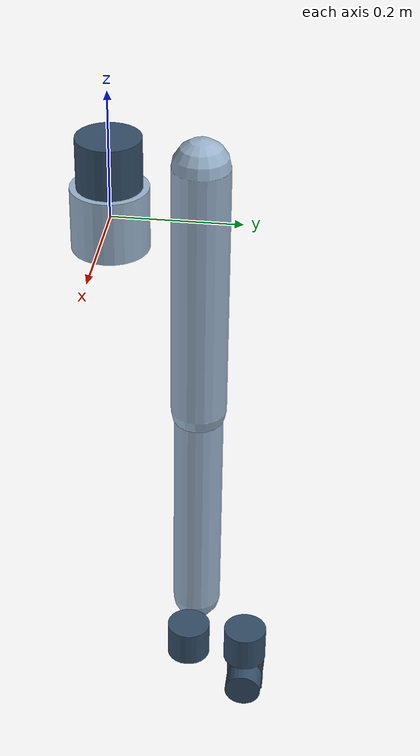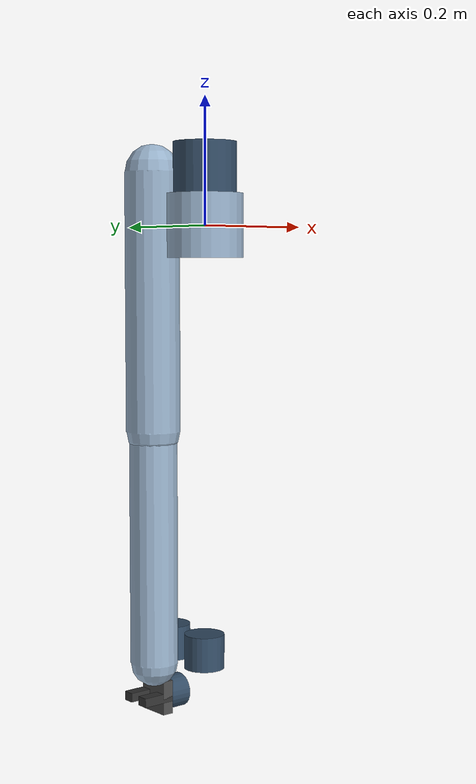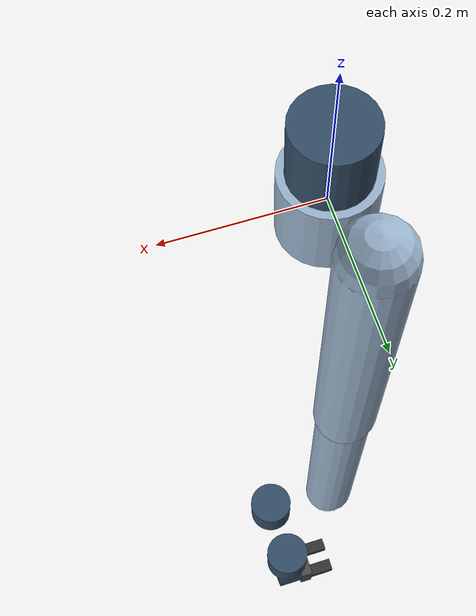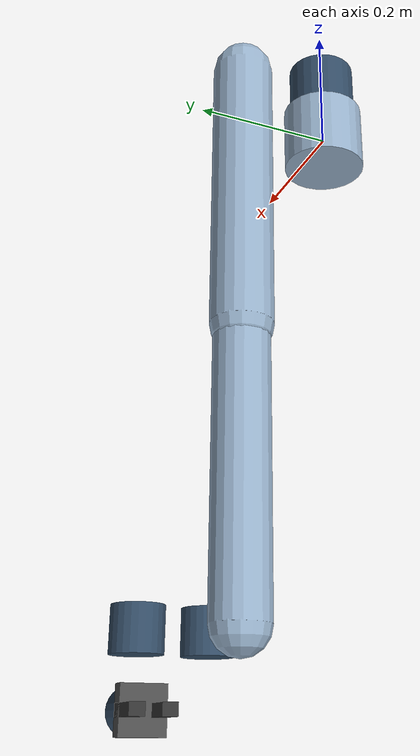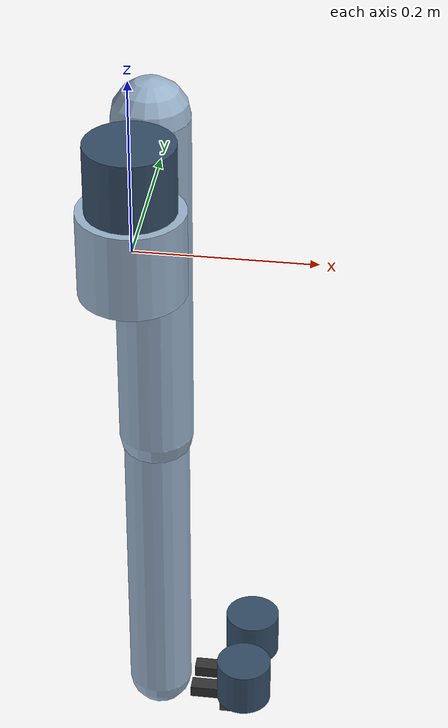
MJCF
<mujoco model="ur5_simplified">
  <!-- UR5 机械臂简化模型 -->
  <!-- 适用于快速原型开发和算法测试 -->

  <compiler angle="degree" coordinate="local" inertiafromgeom="true"/>

  <asset>
    <!-- 机械臂材质 -->
    <material name="ur5_metal" rgba="0.6 0.7 0.8 1"
              specular="0.5" shininess="0.3"/>
    <material name="ur5_joint" rgba="0.2 0.3 0.4 1"
              specular="0.4" shininess="0.25"/>
  </asset>

  <worldbody>
    <body name="ur5_base_link" pos="0 0 0">
      <!-- 基座 -->
      <geom name="base" type="cylinder" size="0.06 0.05"
            material="ur5_metal" mass="4"/>

      <!-- 肩关节 -->
      <body name="shoulder_link" pos="0 0 0.089">
        <joint name="shoulder_pan_joint" type="hinge" axis="0 0 1"
               range="-180 180" damping="0.5" armature="0.1"/>
        <geom name="shoulder" type="cylinder" size="0.05 0.04"
              material="ur5_joint" mass="3.7"/>

        <!-- 上臂 -->
        <body name="upper_arm_link" pos="0 0.13585 0" euler="0 90 0">
          <joint name="shoulder_lift_joint" type="hinge" axis="0 0 1"
                 range="-180 180" damping="0.5" armature="0.1"/>
          <geom name="upper_arm" type="capsule" size="0.045"
                fromto="0 0 0 0.425 0 0" material="ur5_metal" mass="8.4"/>

          <!-- 肘关节 -->
          <body name="forearm_link" pos="0.425 0 0">
            <joint name="elbow_joint" type="hinge" axis="0 0 1"
                   range="-180 180" damping="0.5" armature="0.1"/>
            <geom name="forearm" type="capsule" size="0.04"
                  fromto="0 0 0 0.39225 0 0" material="ur5_metal" mass="2.3"/>

            <!-- 手腕1 -->
            <body name="wrist_1_link" pos="0.39225 0 0.10915" euler="0 90 0">
              <joint name="wrist_1_joint" type="hinge" axis="0 0 1"
                     range="-180 180" damping="0.1" armature="0.01"/>
              <geom name="wrist_1" type="cylinder" size="0.035 0.03"
                    material="ur5_joint" mass="1.2"/>

              <!-- 手腕2 -->
              <body name="wrist_2_link" pos="0 0.09465 0">
                <joint name="wrist_2_joint" type="hinge" axis="0 0 1"
                       range="-180 180" damping="0.1" armature="0.01"/>
                <geom name="wrist_2" type="cylinder" size="0.035 0.03"
                      material="ur5_joint" mass="1.2"/>

                <!-- 手腕3 / 末端法兰 -->
                <body name="wrist_3_link" pos="0 0 0.09465" euler="0 90 0">
                  <joint name="wrist_3_joint" type="hinge" axis="0 0 1"
                         range="-180 180" damping="0.1" armature="0.01"/>
                  <geom name="wrist_3" type="cylinder" size="0.03 0.02"
                        material="ur5_joint" mass="0.8"/>

                  <!-- 末端执行器接口 -->
                  <site name="ee_site" pos="0 0 0.02" size="0.01"
                        rgba="1 0 0 0.5"/>

                  <!-- 简单夹爪（可选） -->
                  <body name="gripper_base" pos="0 0 0.03">
                    <geom name="gripper_palm" type="box" size="0.03 0.03 0.01"
                          rgba="0.3 0.3 0.3 1" mass="0.2"/>

                    <!-- 左指 -->
                    <body name="left_finger" pos="0 0.02 0.02">
                      <joint name="left_finger_joint" type="slide" axis="0 1 0"
                             range="0 0.04" damping="0.5"/>
                      <geom name="left_finger_geom" type="box" size="0.008 0.01 0.03"
                            rgba="0.2 0.2 0.2 1" mass="0.05"/>
                    </body>

                    <!-- 右指 -->
                    <body name="right_finger" pos="0 -0.02 0.02">
                      <joint name="right_finger_joint" type="slide" axis="0 -1 0"
                             range="0 0.04" damping="0.5"/>
                      <geom name="right_finger_geom" type="box" size="0.008 0.01 0.03"
                            rgba="0.2 0.2 0.2 1" mass="0.05"/>
                    </body>
                  </body>
                </body>
              </body>
            </body>
          </body>
        </body>
      </body>
    </body>
  </worldbody>

  <!-- 执行器配置 -->
  <actuator>
    <!-- 关节电机 (position control) -->
    <position name="shoulder_pan" joint="shoulder_pan_joint"
              kp="2000" kv="100" ctrlrange="-3.14159 3.14159"/>
    <position name="shoulder_lift" joint="shoulder_lift_joint"
              kp="2000" kv="100" ctrlrange="-3.14159 3.14159"/>
    <position name="elbow" joint="elbow_joint"
              kp="1500" kv="100" ctrlrange="-3.14159 3.14159"/>
    <position name="wrist_1" joint="wrist_1_joint"
              kp="500" kv="50" ctrlrange="-3.14159 3.14159"/>
    <position name="wrist_2" joint="wrist_2_joint"
              kp="500" kv="50" ctrlrange="-3.14159 3.14159"/>
    <position name="wrist_3" joint="wrist_3_joint"
              kp="500" kv="50" ctrlrange="-3.14159 3.14159"/>

    <!-- 夹爪电机 -->
    <motor name="gripper" joint="left_finger_joint" gear="50"
           ctrllimited="true" ctrlrange="0 0.04"/>
    <motor name="gripper_mirror" joint="right_finger_joint" gear="50"
           ctrllimited="true" ctrlrange="0 0.04"/>
  </actuator>

  <!-- 传感器 -->
  <sensor>
    <!-- 关节位置传感器 -->
    <jointpos name="shoulder_pan_pos" joint="shoulder_pan_joint"/>
    <jointpos name="shoulder_lift_pos" joint="shoulder_lift_joint"/>
    <jointpos name="elbow_pos" joint="elbow_joint"/>
    <jointpos name="wrist_1_pos" joint="wrist_1_joint"/>
    <jointpos name="wrist_2_pos" joint="wrist_2_joint"/>
    <jointpos name="wrist_3_pos" joint="wrist_3_joint"/>

    <!-- 关节速度传感器 -->
    <jointvel name="shoulder_pan_vel" joint="shoulder_pan_joint"/>
    <jointvel name="shoulder_lift_vel" joint="shoulder_lift_joint"/>
    <jointvel name="elbow_vel" joint="elbow_joint"/>

    <!-- 末端执行器位置 -->
    <framepos name="ee_pos" objtype="site" objname="ee_site"/>
    <framequat name="ee_quat" objtype="site" objname="ee_site"/>

    <!-- 触觉传感器（夹爪） -->
    <touch name="left_finger_touch" site="ee_site"/>
  </sensor>
</mujoco>
